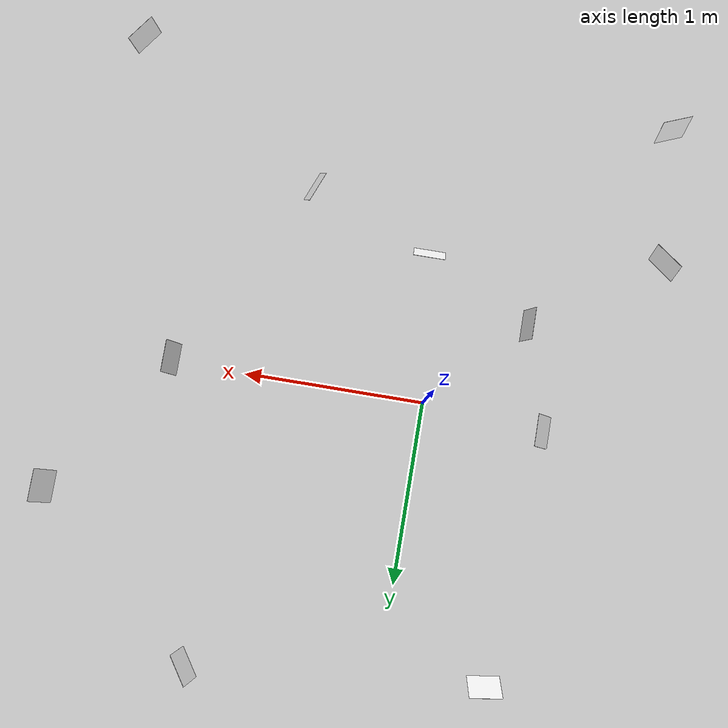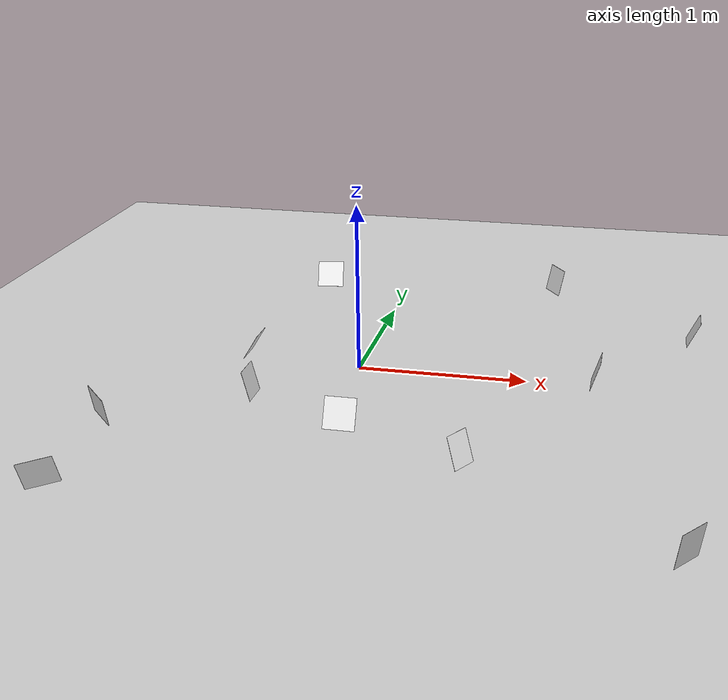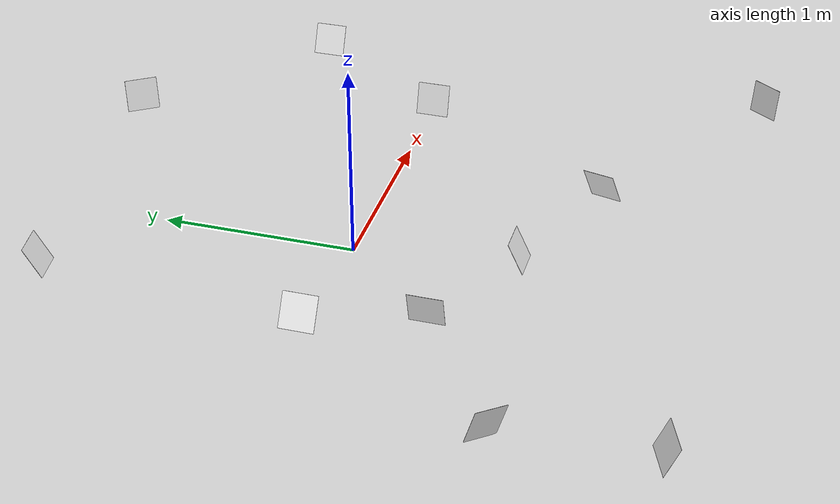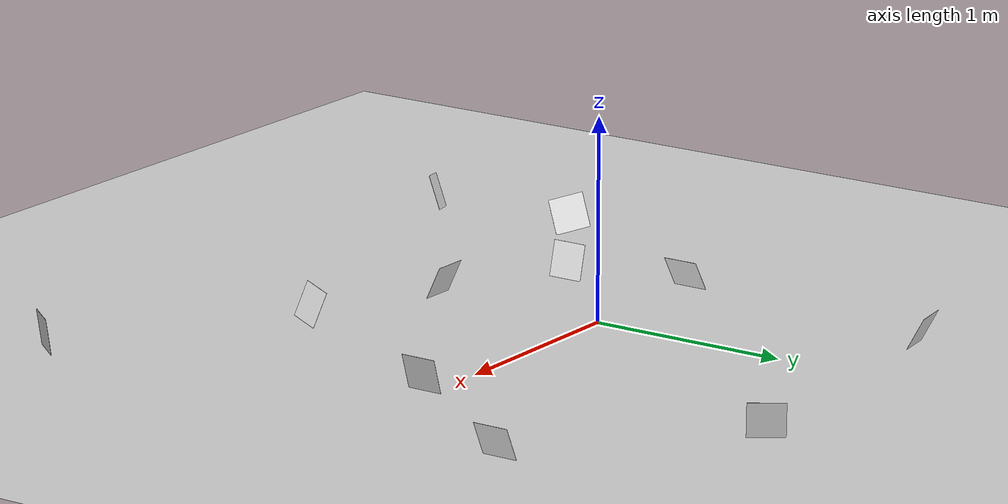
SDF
<sdf version="1.7">
 <world name="default">
  <physics name="normal" type="ode">
   <real_time_update_rate>1000</real_time_update_rate>
   <max_step_size>0.001</max_step_size>
   <real_time_factor>1</real_time_factor>
  </physics>
  <model name="ground_plane">
   <static>1</static>
   <link name="link">
    <collision name="collision">
     <geometry><plane><normal>0 0 1</normal><size>100 100</size></plane></geometry>
     <surface>
      <contact><collide_bitmask>65535</collide_bitmask></contact>
      <friction><ode><mu>100</mu><mu2>50</mu2></ode></friction>
     </surface>
    </collision>
    <visual name="visual">
     <cast_shadows>0</cast_shadows>
     <geometry><plane><normal>0 0 1</normal><size>100 100</size></plane></geometry>
     <material>
      <script><uri>file://media/materials/scripts/gazebo.material</uri><name>Gazebo/Grey</name></script>
     </material>
    </visual>
   </link>
  </model>
  <light name="sun" type="directional">
   <pose>0 0 10 0 -0 0</pose>
   <diffuse>0.8 0.8 0.8 1</diffuse>
   <specular>0.2 0.2 0.2 1</specular>
   <attenuation>
    <range>1000</range>
    <constant>0.9</constant>
    <linear>0.01</linear>
    <quadratic>0.001</quadratic>
   </attenuation>
   <direction>-0.5 0.1 -0.9</direction>
   <spot><inner_angle>0</inner_angle><outer_angle>0</outer_angle><falloff>0</falloff></spot>
  </light>
  <gravity>0 0 -9.8</gravity>
  <magnetic_field>6e-06 2.3e-05 -4.2e-05</magnetic_field>
  <atmosphere type="adiabatic"/>
  <scene><ambient>0.4 0.4 0.4 1</ambient><background>0.7 0.7 0.7 1</background><shadows>1</shadows></scene>
  <spherical_coordinates>
   <surface_model>EARTH_WGS84</surface_model>
   <latitude_deg>0</latitude_deg>
   <longitude_deg>0</longitude_deg>
   <elevation>0</elevation>
   <heading_deg>0</heading_deg>
  </spherical_coordinates>
  <model name="marker_16">
   <link name="marker">
    <visual name="visual">
     <geometry><box><size>0.1778 0.1778 1e-05</size></box></geometry>
     <material>
      <script>
       <uri>model://marker_16/materials/scripts</uri>
       <uri>model://marker_16/materials/textures</uri>
       <name>ArucoVisualMarker16/Marker</name>
      </script>
      <ambient>1 1 1 1</ambient>
      <diffuse>1 1 1 1</diffuse>
      <specular>0 0 0 1</specular>
      <emissive>1 1 1 0</emissive>
      <shader type="vertex"><normal_map>__default__</normal_map></shader>
     </material>
    </visual>
    <collision name="collision"><geometry><box><size>0.1778 0.1778 1e-05</size></box></geometry></collision>
   </link>
   <link name="marker_pad">
    <pose relative_to="marker">0 0 -0.001 0 -0 0</pose>
    <visual name="visual">
     <geometry><box><size>0.1778 0.1778 1e-05</size></box></geometry>
     <material>
      <lighting>1</lighting>
      <script><uri>file://media/materials/scripts/gazebo.material</uri><name>Gazebo/White</name></script>
      <ambient>0.3 0.3 0.3 1</ambient>
      <diffuse>0.7 0.7 0.7 1</diffuse>
      <specular>0.01 0.01 0.01 1</specular>
      <emissive>1 1 1 0</emissive>
      <shader type="vertex"><normal_map>__default__</normal_map></shader>
     </material>
    </visual>
    <collision name="collision"><geometry><box><size>0.1778 0.1778 1e-05</size></box></geometry></collision>
   </link>
   <joint name="marker_JOINT_marker_pad" type="revolute">
    <parent>marker</parent>
    <child>marker_pad</child>
    <axis>
     <xyz>0 0 1</xyz>
     <limit><upper>0</upper><lower>0</lower></limit>
     <dynamics><spring_reference>0</spring_reference><spring_stiffness>0</spring_stiffness></dynamics>
    </axis>
   </joint>
   <static>1</static>
   <pose>0.094388 -0.823872 0.094737 1.1329 -0 0</pose>
  </model>
  <model name="marker_14">
   <link name="marker">
    <visual name="visual">
     <geometry><box><size>0.1778 0.1778 1e-05</size></box></geometry>
     <material>
      <script>
       <uri>model://marker_14/materials/scripts</uri>
       <uri>model://marker_14/materials/textures</uri>
       <name>ArucoVisualMarker14/Marker</name>
      </script>
      <ambient>1 1 1 1</ambient>
      <diffuse>1 1 1 1</diffuse>
      <specular>0 0 0 1</specular>
      <emissive>1 1 1 0</emissive>
      <shader type="vertex"><normal_map>__default__</normal_map></shader>
     </material>
    </visual>
    <collision name="collision"><geometry><box><size>0.1778 0.1778 1e-05</size></box></geometry></collision>
   </link>
   <link name="marker_pad">
    <pose relative_to="marker">0 0 -0.001 0 -0 0</pose>
    <visual name="visual">
     <geometry><box><size>0.1778 0.1778 1e-05</size></box></geometry>
     <material>
      <lighting>1</lighting>
      <script><uri>file://media/materials/scripts/gazebo.material</uri><name>Gazebo/White</name></script>
      <ambient>0.3 0.3 0.3 1</ambient>
      <diffuse>0.7 0.7 0.7 1</diffuse>
      <specular>0.01 0.01 0.01 1</specular>
      <emissive>1 1 1 0</emissive>
      <shader type="vertex"><normal_map>__default__</normal_map></shader>
     </material>
    </visual>
    <collision name="collision"><geometry><box><size>0.1778 0.1778 1e-05</size></box></geometry></collision>
   </link>
   <joint name="marker_JOINT_marker_pad" type="revolute">
    <parent>marker</parent>
    <child>marker_pad</child>
    <axis>
     <xyz>0 0 1</xyz>
     <limit><upper>0</upper><lower>0</lower></limit>
     <dynamics><spring_reference>0</spring_reference><spring_stiffness>0</spring_stiffness></dynamics>
    </axis>
   </joint>
   <static>1</static>
   <pose>0.787903 -1.09789 0.093804 1.20997 0.114837 1.17429</pose>
  </model>
  <model name="marker_12">
   <link name="marker">
    <visual name="visual">
     <geometry><box><size>0.1778 0.1778 1e-05</size></box></geometry>
     <material>
      <script>
       <uri>model://marker_12/materials/scripts</uri>
       <uri>model://marker_12/materials/textures</uri>
       <name>ArucoVisualMarker12/Marker</name>
      </script>
      <ambient>1 1 1 1</ambient>
      <diffuse>1 1 1 1</diffuse>
      <specular>0 0 0 1</specular>
      <emissive>1 1 1 0</emissive>
      <shader type="vertex"><normal_map>__default__</normal_map></shader>
     </material>
    </visual>
    <collision name="collision"><geometry><box><size>0.1778 0.1778 1e-05</size></box></geometry></collision>
   </link>
   <link name="marker_pad">
    <pose relative_to="marker">0 0 -0.001 0 -0 0</pose>
    <visual name="visual">
     <geometry><box><size>0.1778 0.1778 1e-05</size></box></geometry>
     <material>
      <lighting>1</lighting>
      <script><uri>file://media/materials/scripts/gazebo.material</uri><name>Gazebo/White</name></script>
      <ambient>0.3 0.3 0.3 1</ambient>
      <diffuse>0.7 0.7 0.7 1</diffuse>
      <specular>0.01 0.01 0.01 1</specular>
      <emissive>1 1 1 0</emissive>
      <shader type="vertex"><normal_map>__default__</normal_map></shader>
     </material>
    </visual>
    <collision name="collision"><geometry><box><size>0.1778 0.1778 1e-05</size></box></geometry></collision>
   </link>
   <joint name="marker_JOINT_marker_pad" type="revolute">
    <parent>marker</parent>
    <child>marker_pad</child>
    <axis>
     <xyz>0 0 1</xyz>
     <limit><upper>0</upper><lower>0</lower></limit>
     <dynamics><spring_reference>0</spring_reference><spring_stiffness>0</spring_stiffness></dynamics>
    </axis>
   </joint>
   <static>1</static>
   <pose>1.89111 -1.8048 0.109473 -1.43499 0.024132 0.934283</pose>
  </model>
  <model name="marker_15">
   <link name="marker">
    <visual name="visual">
     <geometry><box><size>0.1778 0.1778 1e-05</size></box></geometry>
     <material>
      <script>
       <uri>model://marker_15/materials/scripts</uri>
       <uri>model://marker_15/materials/textures</uri>
       <name>ArucoVisualMarker15/Marker</name>
      </script>
      <ambient>1 1 1 1</ambient>
      <diffuse>1 1 1 1</diffuse>
      <specular>0 0 0 1</specular>
      <emissive>1 1 1 0</emissive>
      <shader type="vertex"><normal_map>__default__</normal_map></shader>
     </material>
    </visual>
    <collision name="collision"><geometry><box><size>0.1778 0.1778 1e-05</size></box></geometry></collision>
   </link>
   <link name="marker_pad">
    <pose relative_to="marker">0 0 -0.001 0 -0 0</pose>
    <visual name="visual">
     <geometry><box><size>0.1778 0.1778 1e-05</size></box></geometry>
     <material>
      <lighting>1</lighting>
      <script><uri>file://media/materials/scripts/gazebo.material</uri><name>Gazebo/White</name></script>
      <ambient>0.3 0.3 0.3 1</ambient>
      <diffuse>0.7 0.7 0.7 1</diffuse>
      <specular>0.01 0.01 0.01 1</specular>
      <emissive>1 1 1 0</emissive>
      <shader type="vertex"><normal_map>__default__</normal_map></shader>
     </material>
    </visual>
    <collision name="collision"><geometry><box><size>0.1778 0.1778 1e-05</size></box></geometry></collision>
   </link>
   <joint name="marker_JOINT_marker_pad" type="revolute">
    <parent>marker</parent>
    <child>marker_pad</child>
    <axis>
     <xyz>0 0 1</xyz>
     <limit><upper>0</upper><lower>0</lower></limit>
     <dynamics><spring_reference>0</spring_reference><spring_stiffness>0</spring_stiffness></dynamics>
    </axis>
   </joint>
   <static>1</static>
   <pose>-1.1499 -1.75084 0.097136 -1.23868 -0.157528 0.426892</pose>
  </model>
  <model name="marker_29">
   <link name="marker">
    <visual name="visual">
     <geometry><box><size>0.1778 0.1778 1e-05</size></box></geometry>
     <material>
      <script>
       <uri>model://marker_29/materials/scripts</uri>
       <uri>model://marker_29/materials/textures</uri>
       <name>ArucoVisualMarker29/Marker</name>
      </script>
      <ambient>1 1 1 1</ambient>
      <diffuse>1 1 1 1</diffuse>
      <specular>0 0 0 1</specular>
      <emissive>1 1 1 0</emissive>
      <shader type="vertex"><normal_map>__default__</normal_map></shader>
     </material>
    </visual>
    <collision name="collision"><geometry><box><size>0.1778 0.1778 1e-05</size></box></geometry></collision>
   </link>
   <link name="marker_pad">
    <pose relative_to="marker">0 0 -0.001 0 -0 0</pose>
    <visual name="visual">
     <geometry><box><size>0.1778 0.1778 1e-05</size></box></geometry>
     <material>
      <lighting>1</lighting>
      <script><uri>file://media/materials/scripts/gazebo.material</uri><name>Gazebo/White</name></script>
      <ambient>0.3 0.3 0.3 1</ambient>
      <diffuse>0.7 0.7 0.7 1</diffuse>
      <specular>0.01 0.01 0.01 1</specular>
      <emissive>1 1 1 0</emissive>
      <shader type="vertex"><normal_map>__default__</normal_map></shader>
     </material>
    </visual>
    <collision name="collision"><geometry><box><size>0.1778 0.1778 1e-05</size></box></geometry></collision>
   </link>
   <joint name="marker_JOINT_marker_pad" type="revolute">
    <parent>marker</parent>
    <child>marker_pad</child>
    <axis>
     <xyz>0 0 1</xyz>
     <limit><upper>0</upper><lower>0</lower></limit>
     <dynamics><spring_reference>0</spring_reference><spring_stiffness>0</spring_stiffness></dynamics>
    </axis>
   </joint>
   <static>1</static>
   <pose>-1.20314 -0.986271 0.093027 -1.35293 0.188071 -0.701312</pose>
  </model>
  <model name="marker_30">
   <link name="marker">
    <visual name="visual">
     <geometry><box><size>0.1778 0.1778 1e-05</size></box></geometry>
     <material>
      <script>
       <uri>model://marker_30/materials/scripts</uri>
       <uri>model://marker_30/materials/textures</uri>
       <name>ArucoVisualMarker30/Marker</name>
      </script>
      <ambient>1 1 1 1</ambient>
      <diffuse>1 1 1 1</diffuse>
      <specular>0 0 0 1</specular>
      <emissive>1 1 1 0</emissive>
      <shader type="vertex"><normal_map>__default__</normal_map></shader>
     </material>
    </visual>
    <collision name="collision"><geometry><box><size>0.1778 0.1778 1e-05</size></box></geometry></collision>
   </link>
   <link name="marker_pad">
    <pose relative_to="marker">0 0 -0.001 0 -0 0</pose>
    <visual name="visual">
     <geometry><box><size>0.1778 0.1778 1e-05</size></box></geometry>
     <material>
      <lighting>1</lighting>
      <script><uri>file://media/materials/scripts/gazebo.material</uri><name>Gazebo/White</name></script>
      <ambient>0.3 0.3 0.3 1</ambient>
      <diffuse>0.7 0.7 0.7 1</diffuse>
      <specular>0.01 0.01 0.01 1</specular>
      <emissive>1 1 1 0</emissive>
      <shader type="vertex"><normal_map>__default__</normal_map></shader>
     </material>
    </visual>
    <collision name="collision"><geometry><box><size>0.1778 0.1778 1e-05</size></box></geometry></collision>
   </link>
   <joint name="marker_JOINT_marker_pad" type="revolute">
    <parent>marker</parent>
    <child>marker_pad</child>
    <axis>
     <xyz>0 0 1</xyz>
     <limit><upper>0</upper><lower>0</lower></limit>
     <dynamics><spring_reference>0</spring_reference><spring_stiffness>0</spring_stiffness></dynamics>
    </axis>
   </joint>
   <static>1</static>
   <pose>-0.502079 -0.519512 0.096822 0 1.32499 0</pose>
  </model>
  <model name="marker_10">
   <link name="marker">
    <visual name="visual">
     <geometry><box><size>0.1778 0.1778 1e-05</size></box></geometry>
     <material>
      <script>
       <uri>model://marker_10/materials/scripts</uri>
       <uri>model://marker_10/materials/textures</uri>
       <name>ArucoVisualMarker10/Marker</name>
      </script>
      <ambient>1 1 1 1</ambient>
      <diffuse>1 1 1 1</diffuse>
      <specular>0 0 0 1</specular>
      <emissive>1 1 1 0</emissive>
      <shader type="vertex"><normal_map>__default__</normal_map></shader>
     </material>
    </visual>
    <collision name="collision"><geometry><box><size>0.1778 0.1778 1e-05</size></box></geometry></collision>
   </link>
   <link name="marker_pad">
    <pose relative_to="marker">0 0 -0.001 0 -0 0</pose>
    <visual name="visual">
     <geometry><box><size>0.1778 0.1778 1e-05</size></box></geometry>
     <material>
      <lighting>1</lighting>
      <script><uri>file://media/materials/scripts/gazebo.material</uri><name>Gazebo/White</name></script>
      <ambient>0.3 0.3 0.3 1</ambient>
      <diffuse>0.7 0.7 0.7 1</diffuse>
      <specular>0.01 0.01 0.01 1</specular>
      <emissive>1 1 1 0</emissive>
      <shader type="vertex"><normal_map>__default__</normal_map></shader>
     </material>
    </visual>
    <collision name="collision"><geometry><box><size>0.1778 0.1778 1e-05</size></box></geometry></collision>
   </link>
   <joint name="marker_JOINT_marker_pad" type="revolute">
    <parent>marker</parent>
    <child>marker_pad</child>
    <axis>
     <xyz>0 0 1</xyz>
     <limit><upper>0</upper><lower>0</lower></limit>
     <dynamics><spring_reference>0</spring_reference><spring_stiffness>0</spring_stiffness></dynamics>
    </axis>
   </joint>
   <static>1</static>
   <pose>-0.669855 0.048954 0.087536 0 -1.02212 0</pose>
  </model>
  <model name="marker_19">
   <link name="marker">
    <visual name="visual">
     <geometry><box><size>0.1778 0.1778 1e-05</size></box></geometry>
     <material>
      <script>
       <uri>model://marker_19/materials/scripts</uri>
       <uri>model://marker_19/materials/textures</uri>
       <name>ArucoVisualMarker19/Marker</name>
      </script>
      <ambient>1 1 1 1</ambient>
      <diffuse>1 1 1 1</diffuse>
      <specular>0 0 0 1</specular>
      <emissive>1 1 1 0</emissive>
      <shader type="vertex"><normal_map>__default__</normal_map></shader>
     </material>
    </visual>
    <collision name="collision"><geometry><box><size>0.1778 0.1778 1e-05</size></box></geometry></collision>
   </link>
   <link name="marker_pad">
    <pose relative_to="marker">0 0 -0.001 0 -0 0</pose>
    <visual name="visual">
     <geometry><box><size>0.1778 0.1778 1e-05</size></box></geometry>
     <material>
      <lighting>1</lighting>
      <script><uri>file://media/materials/scripts/gazebo.material</uri><name>Gazebo/White</name></script>
      <ambient>0.3 0.3 0.3 1</ambient>
      <diffuse>0.7 0.7 0.7 1</diffuse>
      <specular>0.01 0.01 0.01 1</specular>
      <emissive>1 1 1 0</emissive>
      <shader type="vertex"><normal_map>__default__</normal_map></shader>
     </material>
    </visual>
    <collision name="collision"><geometry><box><size>0.1778 0.1778 1e-05</size></box></geometry></collision>
   </link>
   <joint name="marker_JOINT_marker_pad" type="revolute">
    <parent>marker</parent>
    <child>marker_pad</child>
    <axis>
     <xyz>0 0 1</xyz>
     <limit><upper>0</upper><lower>0</lower></limit>
     <dynamics><spring_reference>0</spring_reference><spring_stiffness>0</spring_stiffness></dynamics>
    </axis>
   </joint>
   <static>1</static>
   <pose>1.96134 0.783578 0.08861 0 -1.13992 0</pose>
  </model>
  <model name="marker_6">
   <link name="marker">
    <visual name="visual">
     <geometry><box><size>0.1778 0.1778 1e-05</size></box></geometry>
     <material>
      <script>
       <uri>model://marker_6/materials/scripts</uri>
       <uri>model://marker_6/materials/textures</uri>
       <name>ArucoVisualMarker6/Marker</name>
      </script>
      <ambient>1 1 1 1</ambient>
      <diffuse>1 1 1 1</diffuse>
      <specular>0 0 0 1</specular>
      <emissive>1 1 1 0</emissive>
      <shader type="vertex"><normal_map>__default__</normal_map></shader>
     </material>
    </visual>
    <collision name="collision"><geometry><box><size>0.1778 0.1778 1e-05</size></box></geometry></collision>
   </link>
   <link name="marker_pad">
    <pose relative_to="marker">0 0 -0.001 0 -0 0</pose>
    <visual name="visual">
     <geometry><box><size>0.1778 0.1778 1e-05</size></box></geometry>
     <material>
      <lighting>1</lighting>
      <script><uri>file://media/materials/scripts/gazebo.material</uri><name>Gazebo/White</name></script>
      <ambient>0.3 0.3 0.3 1</ambient>
      <diffuse>0.7 0.7 0.7 1</diffuse>
      <specular>0.01 0.01 0.01 1</specular>
      <emissive>1 1 1 0</emissive>
      <shader type="vertex"><normal_map>__default__</normal_map></shader>
     </material>
    </visual>
    <collision name="collision"><geometry><box><size>0.1778 0.1778 1e-05</size></box></geometry></collision>
   </link>
   <joint name="marker_JOINT_marker_pad" type="revolute">
    <parent>marker</parent>
    <child>marker_pad</child>
    <axis>
     <xyz>0 0 1</xyz>
     <limit><upper>0</upper><lower>0</lower></limit>
     <dynamics><spring_reference>0</spring_reference><spring_stiffness>0</spring_stiffness></dynamics>
    </axis>
   </joint>
   <static>1</static>
   <pose>1.03151 1.5895 0.08882 1.34049 -0 -0.977324</pose>
  </model>
  <model name="marker_9">
   <link name="marker">
    <visual name="visual">
     <geometry><box><size>0.1778 0.1778 1e-05</size></box></geometry>
     <material>
      <script>
       <uri>model://marker_9/materials/scripts</uri>
       <uri>model://marker_9/materials/textures</uri>
       <name>ArucoVisualMarker9/Marker</name>
      </script>
      <ambient>1 1 1 1</ambient>
      <diffuse>1 1 1 1</diffuse>
      <specular>0 0 0 1</specular>
      <emissive>1 1 1 0</emissive>
      <shader type="vertex"><normal_map>__default__</normal_map></shader>
     </material>
    </visual>
    <collision name="collision"><geometry><box><size>0.1778 0.1778 1e-05</size></box></geometry></collision>
   </link>
   <link name="marker_pad">
    <pose relative_to="marker">0 0 -0.001 0 -0 0</pose>
    <visual name="visual">
     <geometry><box><size>0.1778 0.1778 1e-05</size></box></geometry>
     <material>
      <lighting>1</lighting>
      <script><uri>file://media/materials/scripts/gazebo.material</uri><name>Gazebo/White</name></script>
      <ambient>0.3 0.3 0.3 1</ambient>
      <diffuse>0.7 0.7 0.7 1</diffuse>
      <specular>0.01 0.01 0.01 1</specular>
      <emissive>1 1 1 0</emissive>
      <shader type="vertex"><normal_map>__default__</normal_map></shader>
     </material>
    </visual>
    <collision name="collision"><geometry><box><size>0.1778 0.1778 1e-05</size></box></geometry></collision>
   </link>
   <joint name="marker_JOINT_marker_pad" type="revolute">
    <parent>marker</parent>
    <child>marker_pad</child>
    <axis>
     <xyz>0 0 1</xyz>
     <limit><upper>0</upper><lower>0</lower></limit>
     <dynamics><spring_reference>0</spring_reference><spring_stiffness>0</spring_stiffness></dynamics>
    </axis>
   </joint>
   <static>1</static>
   <pose>-0.560143 1.43433 0.077967 -1.08464 -0 -2.99874</pose>
  </model>
  <model name="marker_3">
   <link name="marker">
    <visual name="visual">
     <geometry><box><size>0.1778 0.1778 1e-05</size></box></geometry>
     <material>
      <script>
       <uri>model://marker_3/materials/scripts</uri>
       <uri>model://marker_3/materials/textures</uri>
       <name>ArucoVisualMarker3/Marker</name>
      </script>
      <ambient>1 1 1 1</ambient>
      <diffuse>1 1 1 1</diffuse>
      <specular>0 0 0 1</specular>
      <emissive>1 1 1 0</emissive>
      <shader type="vertex"><normal_map>__default__</normal_map></shader>
     </material>
    </visual>
    <collision name="collision"><geometry><box><size>0.1778 0.1778 1e-05</size></box></geometry></collision>
   </link>
   <link name="marker_pad">
    <pose relative_to="marker">0 0 -0.001 0 -0 0</pose>
    <visual name="visual">
     <geometry><box><size>0.1778 0.1778 1e-05</size></box></geometry>
     <material>
      <lighting>1</lighting>
      <script><uri>file://media/materials/scripts/gazebo.material</uri><name>Gazebo/White</name></script>
      <ambient>0.3 0.3 0.3 1</ambient>
      <diffuse>0.7 0.7 0.7 1</diffuse>
      <specular>0.01 0.01 0.01 1</specular>
      <emissive>1 1 1 0</emissive>
      <shader type="vertex"><normal_map>__default__</normal_map></shader>
     </material>
    </visual>
    <collision name="collision"><geometry><box><size>0.1778 0.1778 1e-05</size></box></geometry></collision>
   </link>
   <joint name="marker_JOINT_marker_pad" type="revolute">
    <parent>marker</parent>
    <child>marker_pad</child>
    <axis>
     <xyz>0 0 1</xyz>
     <limit><upper>0</upper><lower>0</lower></limit>
     <dynamics><spring_reference>0</spring_reference><spring_stiffness>0</spring_stiffness></dynamics>
    </axis>
   </joint>
   <static>1</static>
   <pose>1.39875 -0.01565 0.105538 0 -1.26989 0</pose>
  </model>
 </world>
</sdf>
